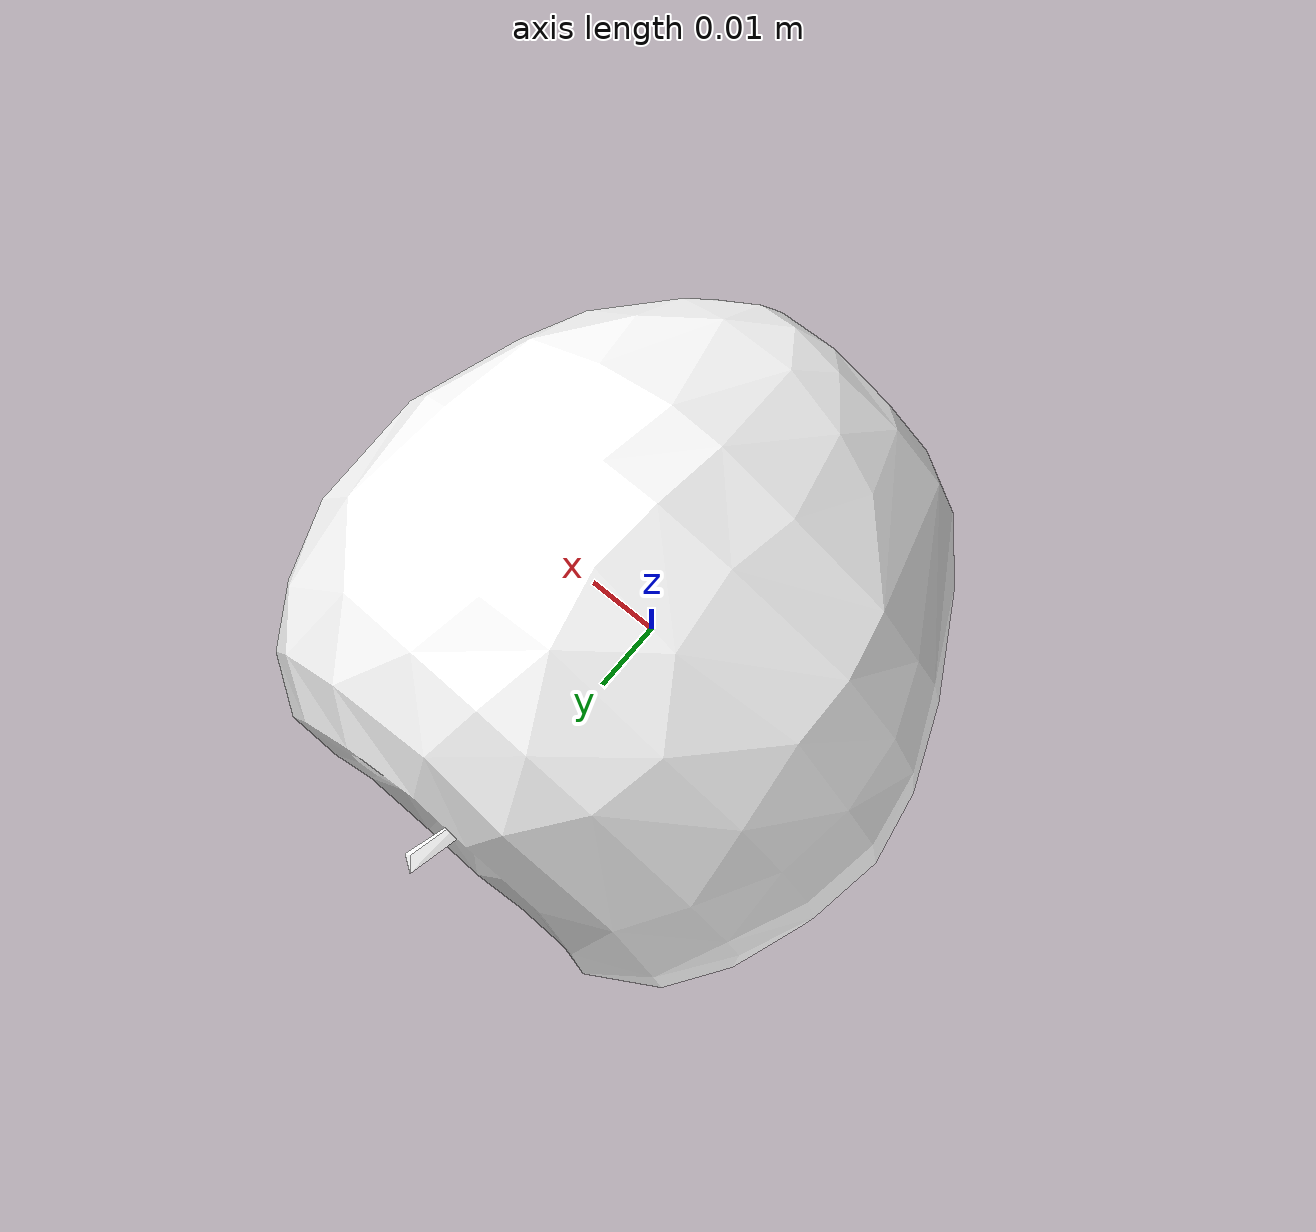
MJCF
<mujoco model="Apple_21">
  <default>
    <default class="visual">
      <geom group="2" type="mesh" contype="0" conaffinity="0"/>
    </default>
    <default class="collision">
      <geom group="3" type="mesh"/>
    </default>
  </default>
  <asset>
    <material name="Apple2_Mat3" specular="0.5" shininess="0.5" rgba="1 1 1 1.0"/>
    <mesh file="Apple_21.obj"/>
    <mesh file="Apple_21_collision_0.obj"/>
    <mesh file="Apple_21_collision_1.obj"/>
    <mesh file="Apple_21_collision_2.obj"/>
    <mesh file="Apple_21_collision_3.obj"/>
    <mesh file="Apple_21_collision_4.obj"/>
    <mesh file="Apple_21_collision_5.obj"/>
    <mesh file="Apple_21_collision_6.obj"/>
    <mesh file="Apple_21_collision_7.obj"/>
    <mesh file="Apple_21_collision_8.obj"/>
    <mesh file="Apple_21_collision_9.obj"/>
    <mesh file="Apple_21_collision_10.obj"/>
  </asset>
  <worldbody>
    <body name="Apple_21">
      <geom material="Apple2_Mat3" mesh="Apple_21" class="visual"/>
      <geom mesh="Apple_21_collision_0" rgba="0.9849188694230936 0.8295115271937734 0.16713058271625048 1" class="collision"/>
      <geom mesh="Apple_21_collision_1" rgba="0.06351013802275729 0.8767310873807531 0.6014142934550003 1" class="collision"/>
      <geom mesh="Apple_21_collision_2" rgba="0.4223539127872562 0.6951478327142944 0.8995870867127399 1" class="collision"/>
      <geom mesh="Apple_21_collision_3" rgba="0.8917974423014963 0.6371324760149683 0.8282197262183237 1" class="collision"/>
      <geom mesh="Apple_21_collision_4" rgba="0.1805560331537629 0.8480368039243122 0.25997357204530835 1" class="collision"/>
      <geom mesh="Apple_21_collision_5" rgba="0.31339840276321373 0.5942294665516036 0.7912791343027026 1" class="collision"/>
      <geom mesh="Apple_21_collision_6" rgba="0.4835609514495126 0.30938524720574123 0.7939844845264453 1" class="collision"/>
      <geom mesh="Apple_21_collision_7" rgba="0.48319000690566505 0.423776485531122 0.5808055237852763 1" class="collision"/>
      <geom mesh="Apple_21_collision_8" rgba="0.8731734468152078 0.2727028815791117 0.9794586038312587 1" class="collision"/>
      <geom mesh="Apple_21_collision_9" rgba="0.23001277568734946 0.6202711675305971 0.20230807364948866 1" class="collision"/>
      <geom mesh="Apple_21_collision_10" rgba="0.09516389567081707 0.7076273698659735 0.8515611156966169 1" class="collision"/>
    </body>
  </worldbody>
</mujoco>
